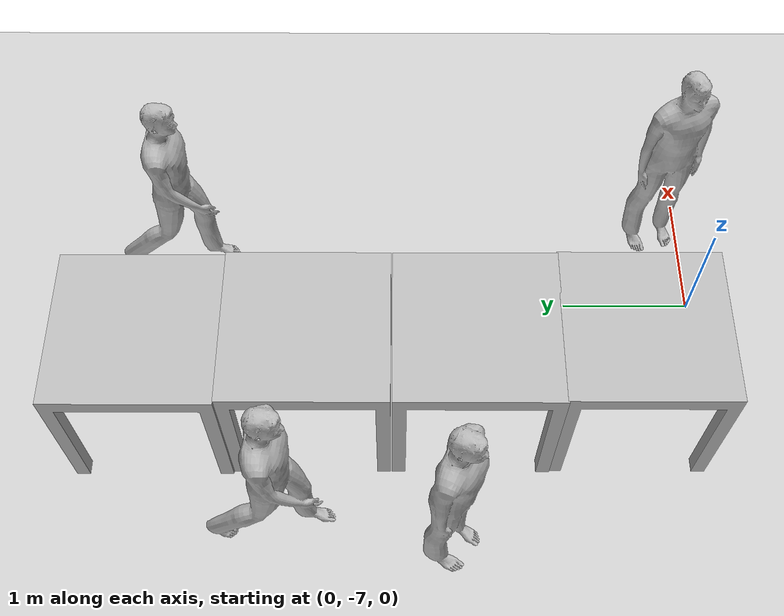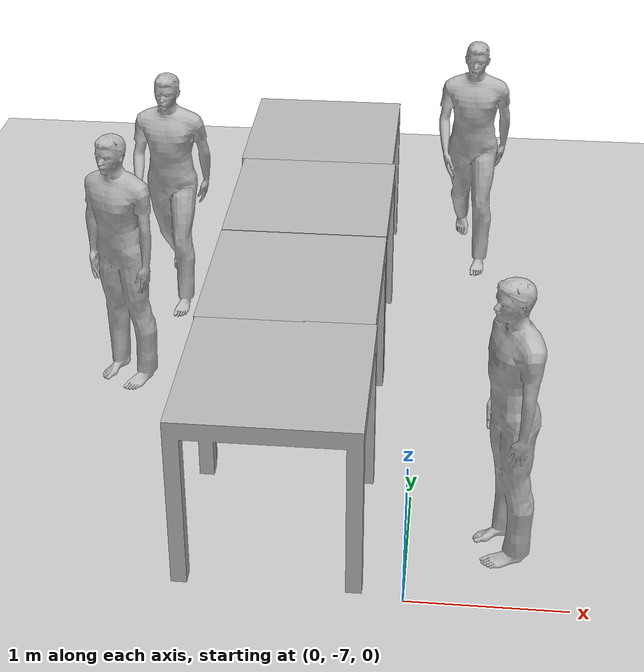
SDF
<sdf version="1.6">
 <world name="default">
  <light name="sun" type="directional">
   <pose>0 0 10 0 -0 0</pose>
   <diffuse>0.8 0.8 0.8 1</diffuse>
   <specular>0.2 0.2 0.2 1</specular>
   <attenuation>
    <range>1000</range>
    <constant>0.9</constant>
    <linear>0.01</linear>
    <quadratic>0.001</quadratic>
   </attenuation>
   <direction>-0.5 0.1 -0.9</direction>
  </light>
  <model name="ground_plane">
   <static>1</static>
   <link name="link">
    <collision name="collision">
     <geometry><plane><normal>0 0 1</normal><size>100 100</size></plane></geometry>
     <surface><friction><ode><mu>100</mu><mu2>50</mu2></ode></friction></surface>
    </collision>
    <visual name="visual">
     <cast_shadows>0</cast_shadows>
     <geometry><plane><normal>0 0 1</normal><size>100 100</size></plane></geometry>
     <material>
      <script><uri>file://media/materials/scripts/gazebo.material</uri><name>Gazebo/Grey</name></script>
     </material>
    </visual>
   </link>
  </model>
  <gravity>0 0 -9.8</gravity>
  <magnetic_field>6e-06 2.3e-05 -4.2e-05</magnetic_field>
  <atmosphere type="adiabatic"/>
  <physics name="default_physics" default="0" type="ode">
   <max_step_size>0.001</max_step_size>
   <real_time_factor>1</real_time_factor>
   <real_time_update_rate>1000</real_time_update_rate>
  </physics>
  <scene><ambient>0.4 0.4 0.4 1</ambient><background>0.7 0.7 0.7 1</background><shadows>1</shadows></scene>
  <spherical_coordinates>
   <surface_model>EARTH_WGS84</surface_model>
   <latitude_deg>0</latitude_deg>
   <longitude_deg>0</longitude_deg>
   <elevation>0</elevation>
   <heading_deg>0</heading_deg>
  </spherical_coordinates>
  <model name="nist_elevated_floor_120">
   <static>1</static>
   <link name="nist_elevated_floor_120">
    <collision name="collision">
     <geometry>
      <mesh><uri>model://nist_elevated_floor_120/meshes/nist_elevated_floor_120.dae</uri><scale>1 1 1</scale></mesh>
     </geometry>
    </collision>
    <visual name="visual">
     <geometry>
      <mesh><uri>model://nist_elevated_floor_120/meshes/nist_elevated_floor_120.dae</uri><scale>1 1 1</scale></mesh>
     </geometry>
    </visual>
   </link>
   <pose>-0.878229 -2.83385 0 0 -0 0</pose>
  </model>
  <model name="nist_elevated_floor_120_0">
   <static>1</static>
   <link name="nist_elevated_floor_120">
    <collision name="collision">
     <geometry>
      <mesh><uri>model://nist_elevated_floor_120/meshes/nist_elevated_floor_120.dae</uri><scale>1 1 1</scale></mesh>
     </geometry>
    </collision>
    <visual name="visual">
     <geometry>
      <mesh><uri>model://nist_elevated_floor_120/meshes/nist_elevated_floor_120.dae</uri><scale>1 1 1</scale></mesh>
     </geometry>
    </visual>
   </link>
   <pose>-0.856494 -4.01023 0 0 -0 0</pose>
  </model>
  <model name="nist_elevated_floor_120_1">
   <static>1</static>
   <link name="nist_elevated_floor_120">
    <collision name="collision">
     <geometry>
      <mesh><uri>model://nist_elevated_floor_120/meshes/nist_elevated_floor_120.dae</uri><scale>1 1 1</scale></mesh>
     </geometry>
    </collision>
    <visual name="visual">
     <geometry>
      <mesh><uri>model://nist_elevated_floor_120/meshes/nist_elevated_floor_120.dae</uri><scale>1 1 1</scale></mesh>
     </geometry>
    </visual>
   </link>
   <pose>-0.856154 -5.19851 0 0 -0 0</pose>
  </model>
  <model name="nist_elevated_floor_120_2">
   <static>1</static>
   <link name="nist_elevated_floor_120">
    <collision name="collision">
     <geometry>
      <mesh><uri>model://nist_elevated_floor_120/meshes/nist_elevated_floor_120.dae</uri><scale>1 1 1</scale></mesh>
     </geometry>
    </collision>
    <visual name="visual">
     <geometry>
      <mesh><uri>model://nist_elevated_floor_120/meshes/nist_elevated_floor_120.dae</uri><scale>1 1 1</scale></mesh>
     </geometry>
    </visual>
   </link>
   <pose>-0.84693 -6.36767 0 0 -0 0</pose>
  </model>
  <model name="person_standing">
   <link name="link">
    <inertial>
     <pose>0 -0.1 0.95 0 -0 0</pose>
     <mass>80</mass>
     <inertia><ixx>24.88</ixx><ixy>0</ixy><ixz>0</ixz><iyy>25.73</iyy><iyz>0</iyz><izz>2.48</izz></inertia>
    </inertial>
    <collision name="bottom">
     <pose>0 -0.1 0.01 0 -0 0</pose>
     <geometry><box><size>0.5 0.35 0.02</size></box></geometry>
    </collision>
    <collision name="person">
     <pose>0 0 0.02 0.04 -0 0</pose>
     <geometry><mesh><uri>model://person_standing/meshes/standing.dae</uri></mesh></geometry>
    </collision>
    <visual name="visual">
     <pose>0 0 0.02 0.04 -0 0</pose>
     <geometry><mesh><uri>model://person_standing/meshes/standing.dae</uri></mesh></geometry>
    </visual>
   </link>
   <pose>-2.03882 -4.95306 0.190033 0.000848 -2e-06 -0.549816</pose>
  </model>
  <model name="person_walking">
   <link name="link">
    <inertial>
     <pose>0 0 0.95 0 -0 0</pose>
     <mass>80</mass>
     <inertia><ixx>27.82</ixx><ixy>0</ixy><ixz>0</ixz><iyy>24.88</iyy><iyz>0</iyz><izz>4.57</izz></inertia>
    </inertial>
    <collision name="bottom">
     <pose>0 0 0.01 0 -0 0</pose>
     <geometry><box><size>0.35 0.75 0.02</size></box></geometry>
    </collision>
    <collision name="person">
     <pose>0 0 -0.02 0 -0 0</pose>
     <geometry><mesh><uri>model://person_walking/meshes/walking.dae</uri></mesh></geometry>
    </collision>
    <visual name="visual">
     <pose>0 0 -0.02 0 -0 0</pose>
     <geometry><mesh><uri>model://person_walking/meshes/walking.dae</uri></mesh></geometry>
    </visual>
   </link>
   <pose>0.334463 -2.94691 0.1898 -1e-06 -0 -0.107189</pose>
  </model>
  <model name="person_standing_0">
   <link name="link">
    <inertial>
     <pose>0 -0.1 0.95 0 -0 0</pose>
     <mass>80</mass>
     <inertia><ixx>24.88</ixx><ixy>0</ixy><ixz>0</ixz><iyy>25.73</iyy><iyz>0</iyz><izz>2.48</izz></inertia>
    </inertial>
    <collision name="bottom">
     <pose>0 -0.1 0.01 0 -0 0</pose>
     <geometry><box><size>0.5 0.35 0.02</size></box></geometry>
    </collision>
    <collision name="person">
     <pose>0 0 0.02 0.04 -0 0</pose>
     <geometry><mesh><uri>model://person_standing/meshes/standing.dae</uri></mesh></geometry>
    </collision>
    <visual name="visual">
     <pose>0 0 0.02 0.04 -0 0</pose>
     <geometry><mesh><uri>model://person_standing/meshes/standing.dae</uri></mesh></geometry>
    </visual>
   </link>
   <pose>0.664793 -6.66951 0.189869 0.000252 -0 -1.29566</pose>
  </model>
  <model name="person_walking_0">
   <link name="link">
    <inertial>
     <pose>0 0 0.95 0 -0 0</pose>
     <mass>80</mass>
     <inertia><ixx>27.82</ixx><ixy>0</ixy><ixz>0</ixz><iyy>24.88</iyy><iyz>0</iyz><izz>4.57</izz></inertia>
    </inertial>
    <collision name="bottom">
     <pose>0 0 0.01 0 -0 0</pose>
     <geometry><box><size>0.35 0.75 0.02</size></box></geometry>
    </collision>
    <collision name="person">
     <pose>0 0 -0.02 0 -0 0</pose>
     <geometry><mesh><uri>model://person_walking/meshes/walking.dae</uri></mesh></geometry>
    </collision>
    <visual name="visual">
     <pose>0 0 -0.02 0 -0 0</pose>
     <geometry><mesh><uri>model://person_walking/meshes/walking.dae</uri></mesh></geometry>
    </visual>
   </link>
   <pose>-1.93981 -3.79605 0.1898 -1e-06 -0 -0.103042</pose>
  </model>
 </world>
</sdf>
